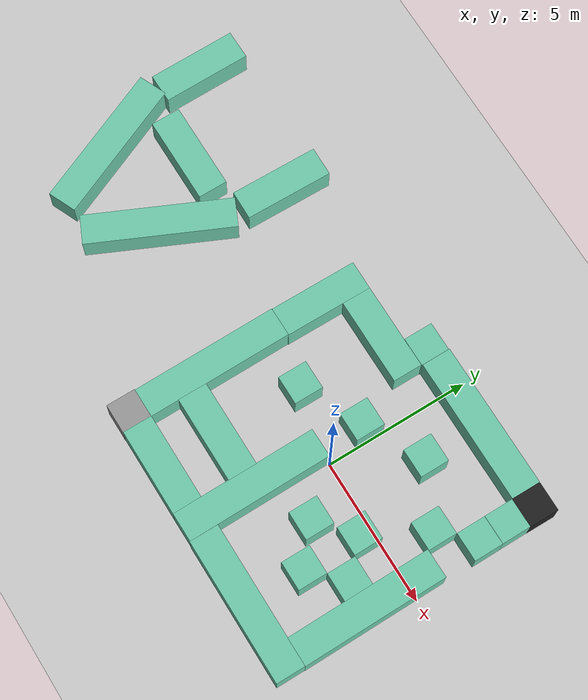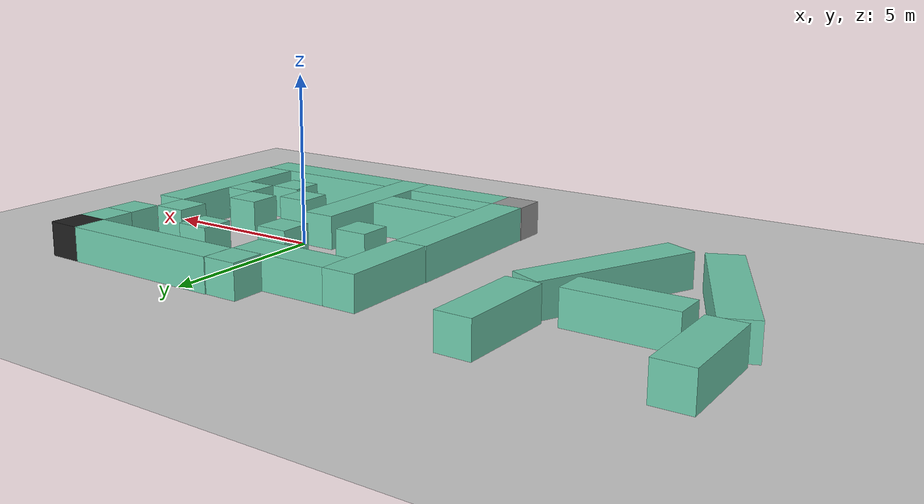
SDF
<sdf version="1.7">
 <world name="default">
  <light name="sun" type="directional">
   <pose>0 0 10 0 -0 0</pose>
   <diffuse>0.8 0.8 0.8 1</diffuse>
   <specular>0.2 0.2 0.2 1</specular>
   <attenuation>
    <range>1000</range>
    <constant>0.9</constant>
    <linear>0.01</linear>
    <quadratic>0.001</quadratic>
   </attenuation>
   <direction>-0.5 0.1 -0.9</direction>
   <spot><inner_angle>0</inner_angle><outer_angle>0</outer_angle><falloff>0</falloff></spot>
  </light>
  <model name="ground_plane">
   <static>1</static>
   <link name="link">
    <collision name="collision">
     <geometry><plane><normal>0 0 1</normal><size>100 100</size></plane></geometry>
     <surface>
      <contact><collide_bitmask>65535</collide_bitmask></contact>
      <friction><ode><mu>100</mu><mu2>50</mu2></ode></friction>
     </surface>
    </collision>
    <visual name="visual">
     <cast_shadows>0</cast_shadows>
     <geometry><plane><normal>0 0 1</normal><size>100 100</size></plane></geometry>
     <material>
      <script><uri>file://media/materials/scripts/gazebo.material</uri><name>Gazebo/Grey</name></script>
     </material>
    </visual>
   </link>
  </model>
  <gravity>0 0 -9.8</gravity>
  <magnetic_field>6e-06 2.3e-05 -4.2e-05</magnetic_field>
  <atmosphere type="adiabatic"/>
  <physics type="ode">
   <max_step_size>0.001</max_step_size>
   <real_time_factor>1</real_time_factor>
   <real_time_update_rate>1000</real_time_update_rate>
  </physics>
  <scene><ambient>0.4 0.4 0.4 1</ambient><background>0.7 0.7 0.7 1</background><shadows>1</shadows></scene>
  <spherical_coordinates>
   <surface_model>EARTH_WGS84</surface_model>
   <latitude_deg>0</latitude_deg>
   <longitude_deg>0</longitude_deg>
   <elevation>0</elevation>
   <heading_deg>0</heading_deg>
  </spherical_coordinates>
  <model name="beyaz_1">
   <pose>-6.40847 -3.04468 0 0 -0 0</pose>
   <link name="Wall_14">
    <collision name="Wall_14_Collision">
     <geometry><box><size>1.01 1 1</size></box></geometry>
     <pose>0 0 0.5 0 -0 0</pose>
    </collision>
    <visual name="Wall_14_Visual">
     <pose>0 0 0.5 0 -0 0</pose>
     <geometry><box><size>1.01 1 1</size></box></geometry>
     <material>
      <script><uri>file://media/materials/scripts/gazebo.material</uri><name>Gazebo/Grey</name></script>
      <ambient>1 1 1 1</ambient>
     </material>
     <meta><layer>0</layer></meta>
    </visual>
    <pose>1.89154 -1.45759 0 0 -0 3.14159</pose>
   </link>
   <static>1</static>
  </model>
  <model name="yesil_3">
   <pose>-2.51252 -4.49376 0 0 -0 0</pose>
   <link name="Wall_6">
    <collision name="Wall_6_Collision">
     <geometry><box><size>3 1 1</size></box></geometry>
     <pose>0 0 0.5 0 -0 0</pose>
    </collision>
    <visual name="Wall_6_Visual">
     <pose>0 0 0.5 0 -0 0</pose>
     <geometry><box><size>3 1 1</size></box></geometry>
     <material>
      <script><uri>file://media/materials/scripts/gazebo.material</uri><name>Gazebo/Grey</name></script>
      <ambient>0.435294 0.796078 0.67451 1</ambient>
     </material>
     <meta><layer>0</layer></meta>
    </visual>
    <pose>0 0 0 0 -0 3.14159</pose>
   </link>
   <static>1</static>
  </model>
  <model name="yesil_5">
   <pose>-0.530437 -2.49174 0 0 -0 1.57822</pose>
   <link name="Wall_4">
    <collision name="Wall_4_Collision">
     <geometry><box><size>5 1 1</size></box></geometry>
     <pose>0 0 0.5 0 -0 0</pose>
    </collision>
    <visual name="Wall_4_Visual">
     <pose>0 0 0.5 0 -0 0</pose>
     <geometry><box><size>5 1 1</size></box></geometry>
     <material>
      <script><uri>file://media/materials/scripts/gazebo.material</uri><name>Gazebo/Grey</name></script>
      <ambient>0.435294 0.796078 0.67451 1</ambient>
     </material>
     <meta><layer>0</layer></meta>
    </visual>
   </link>
   <static>1</static>
  </model>
  <model name="yesil_3_0">
   <pose>-2.51782 -2.51975 0 0 -0 0</pose>
   <link name="Wall_6">
    <collision name="Wall_6_Collision">
     <geometry><box><size>3 1 1</size></box></geometry>
     <pose>0 0 0.5 0 -0 0</pose>
    </collision>
    <visual name="Wall_6_Visual">
     <pose>0 0 0.5 0 -0 0</pose>
     <geometry><box><size>3 1 1</size></box></geometry>
     <material>
      <script><uri>file://media/materials/scripts/gazebo.material</uri><name>Gazebo/Grey</name></script>
      <ambient>0.435294 0.796078 0.67451 1</ambient>
     </material>
     <meta><layer>0</layer></meta>
    </visual>
    <pose>0 0 0 0 -0 3.14159</pose>
   </link>
   <static>1</static>
  </model>
  <model name="yesil_5_clone">
   <pose>-4.5168 -1.50379 0 0 -0 1.57822</pose>
   <link name="Wall_4">
    <collision name="Wall_4_Collision">
     <geometry><box><size>5 1 1</size></box></geometry>
     <pose>0 0 0.5 0 -0 0</pose>
    </collision>
    <visual name="Wall_4_Visual">
     <pose>0 0 0.5 0 -0 0</pose>
     <geometry><box><size>5 1 1</size></box></geometry>
     <material>
      <script><uri>file://media/materials/scripts/gazebo.material</uri><name>Gazebo/Grey</name></script>
      <ambient>0.435294 0.796078 0.67451 1</ambient>
     </material>
     <meta><layer>0</layer></meta>
    </visual>
   </link>
   <static>1</static>
  </model>
  <model name="yesil_5_clone_0">
   <pose>-9.45103 -0.51322 0 0 -0 1.14047</pose>
   <link name="Wall_4">
    <collision name="Wall_4_Collision">
     <geometry><box><size>5 1 1</size></box></geometry>
     <pose>0 0 0.5 0 -0 0</pose>
    </collision>
    <visual name="Wall_4_Visual">
     <pose>0 0 0.5 0 -0 0</pose>
     <geometry><box><size>5 1 1</size></box></geometry>
     <material>
      <script><uri>file://media/materials/scripts/gazebo.material</uri><name>Gazebo/Grey</name></script>
      <ambient>0.435294 0.796078 0.67451 1</ambient>
     </material>
     <meta><layer>0</layer></meta>
    </visual>
   </link>
   <static>1</static>
  </model>
  <model name="yesil_5_clone_0_clone">
   <pose>-12.6533 -0.543096 0 0 -0 1.98539</pose>
   <link name="Wall_4">
    <collision name="Wall_4_Collision">
     <geometry><box><size>5 1 1</size></box></geometry>
     <pose>0 0 0.5 0 -0 0</pose>
    </collision>
    <visual name="Wall_4_Visual">
     <pose>0 0 0.5 0 -0 0</pose>
     <geometry><box><size>5 1 1</size></box></geometry>
     <material>
      <script><uri>file://media/materials/scripts/gazebo.material</uri><name>Gazebo/Grey</name></script>
      <ambient>0.435294 0.796078 0.67451 1</ambient>
     </material>
     <meta><layer>0</layer></meta>
    </visual>
   </link>
   <static>1</static>
  </model>
  <model name="yesil_3_0_clone">
   <pose>-10.9745 1.51173 0 0 -0 0</pose>
   <link name="Wall_6">
    <collision name="Wall_6_Collision">
     <geometry><box><size>3 1 1</size></box></geometry>
     <pose>0 0 0.5 0 -0 0</pose>
    </collision>
    <visual name="Wall_6_Visual">
     <pose>0 0 0.5 0 -0 0</pose>
     <geometry><box><size>3 1 1</size></box></geometry>
     <material>
      <script><uri>file://media/materials/scripts/gazebo.material</uri><name>Gazebo/Grey</name></script>
      <ambient>0.435294 0.796078 0.67451 1</ambient>
     </material>
     <meta><layer>0</layer></meta>
    </visual>
    <pose>0 0 0 0 -0 3.14159</pose>
   </link>
   <static>1</static>
  </model>
  <model name="yesil_3_0_clone_clone">
   <pose>-8.50235 3.49741 0 0 0 -1.58674</pose>
   <link name="Wall_6">
    <collision name="Wall_6_Collision">
     <geometry><box><size>3 1 1</size></box></geometry>
     <pose>0 0 0.5 0 -0 0</pose>
    </collision>
    <visual name="Wall_6_Visual">
     <pose>0 0 0.5 0 -0 0</pose>
     <geometry><box><size>3 1 1</size></box></geometry>
     <material>
      <script><uri>file://media/materials/scripts/gazebo.material</uri><name>Gazebo/Grey</name></script>
      <ambient>0.435294 0.796078 0.67451 1</ambient>
     </material>
     <meta><layer>0</layer></meta>
    </visual>
    <pose>0 0 0 0 -0 3.14159</pose>
   </link>
   <static>1</static>
  </model>
  <model name="yesil_3_0_clone_clone_0">
   <pose>-13.4477 3.37846 0 0 0 -1.5608</pose>
   <link name="Wall_6">
    <collision name="Wall_6_Collision">
     <geometry><box><size>3 1 1</size></box></geometry>
     <pose>0 0 0.5 0 -0 0</pose>
    </collision>
    <visual name="Wall_6_Visual">
     <pose>0 0 0.5 0 -0 0</pose>
     <geometry><box><size>3 1 1</size></box></geometry>
     <material>
      <script><uri>file://media/materials/scripts/gazebo.material</uri><name>Gazebo/Grey</name></script>
      <ambient>0.435294 0.796078 0.67451 1</ambient>
     </material>
     <meta><layer>0</layer></meta>
    </visual>
    <pose>0 0 0 0 -0 3.14159</pose>
   </link>
   <static>1</static>
  </model>
  <model name="yesil_5_0_clone">
   <pose>2.4863 -4.50444 0 0 -0 0</pose>
   <link name="Wall_4">
    <collision name="Wall_4_Collision">
     <geometry><box><size>5 1 1</size></box></geometry>
     <pose>0 0 0.5 0 -0 0</pose>
    </collision>
    <visual name="Wall_4_Visual">
     <pose>0 0 0.5 0 -0 0</pose>
     <geometry><box><size>5 1 1</size></box></geometry>
     <material>
      <script><uri>file://media/materials/scripts/gazebo.material</uri><name>Gazebo/Grey</name></script>
      <ambient>0.435294 0.796078 0.67451 1</ambient>
     </material>
     <meta><layer>0</layer></meta>
    </visual>
   </link>
   <static>1</static>
  </model>
  <model name="yesil_1">
   <pose>2.45612 -0.489767 0 0 -0 0</pose>
   <link name="Wall_8">
    <collision name="Wall_8_Collision">
     <geometry><box><size>1 1 1</size></box></geometry>
     <pose>0 0 0.5 0 -0 0</pose>
    </collision>
    <visual name="Wall_8_Visual">
     <pose>0 0 0.5 0 -0 0</pose>
     <geometry><box><size>1 1 1</size></box></geometry>
     <material>
      <script><uri>file://media/materials/scripts/gazebo.material</uri><name>Gazebo/Grey</name></script>
      <ambient>0.435294 0.796078 0.67451 1</ambient>
     </material>
     <meta><layer>0</layer></meta>
    </visual>
   </link>
   <static>1</static>
  </model>
  <model name="yesil_1_clone">
   <pose>2.47803 -2.48302 0 0 -0 0</pose>
   <link name="Wall_8">
    <collision name="Wall_8_Collision">
     <geometry><box><size>1 1 1</size></box></geometry>
     <pose>0 0 0.5 0 -0 0</pose>
    </collision>
    <visual name="Wall_8_Visual">
     <pose>0 0 0.5 0 -0 0</pose>
     <geometry><box><size>1 1 1</size></box></geometry>
     <material>
      <script><uri>file://media/materials/scripts/gazebo.material</uri><name>Gazebo/Grey</name></script>
      <ambient>0.435294 0.796078 0.67451 1</ambient>
     </material>
     <meta><layer>0</layer></meta>
    </visual>
   </link>
   <static>1</static>
  </model>
  <model name="yesil_1_clone_0">
   <pose>1.29564 -1.48584 0 0 -0 0</pose>
   <link name="Wall_8">
    <collision name="Wall_8_Collision">
     <geometry><box><size>1 1 1</size></box></geometry>
     <pose>0 0 0.5 0 -0 0</pose>
    </collision>
    <visual name="Wall_8_Visual">
     <pose>0 0 0.5 0 -0 0</pose>
     <geometry><box><size>1 1 1</size></box></geometry>
     <material>
      <script><uri>file://media/materials/scripts/gazebo.material</uri><name>Gazebo/Grey</name></script>
      <ambient>0.435294 0.796078 0.67451 1</ambient>
     </material>
     <meta><layer>0</layer></meta>
    </visual>
   </link>
   <static>1</static>
  </model>
  <model name="yesil_1_clone_1">
   <pose>3.48974 -1.48914 0 0 -0 0</pose>
   <link name="Wall_8">
    <collision name="Wall_8_Collision">
     <geometry><box><size>1 1 1</size></box></geometry>
     <pose>0 0 0.5 0 -0 0</pose>
    </collision>
    <visual name="Wall_8_Visual">
     <pose>0 0 0.5 0 -0 0</pose>
     <geometry><box><size>1 1 1</size></box></geometry>
     <material>
      <script><uri>file://media/materials/scripts/gazebo.material</uri><name>Gazebo/Grey</name></script>
      <ambient>0.435294 0.796078 0.67451 1</ambient>
     </material>
     <meta><layer>0</layer></meta>
    </visual>
   </link>
   <static>1</static>
  </model>
  <model name="yesil_5_clone_clone">
   <pose>4.47826 -1.51062 0 0 -0 1.57822</pose>
   <link name="Wall_4">
    <collision name="Wall_4_Collision">
     <geometry><box><size>5 1 1</size></box></geometry>
     <pose>0 0 0.5 0 -0 0</pose>
    </collision>
    <visual name="Wall_4_Visual">
     <pose>0 0 0.5 0 -0 0</pose>
     <geometry><box><size>5 1 1</size></box></geometry>
     <material>
      <script><uri>file://media/materials/scripts/gazebo.material</uri><name>Gazebo/Grey</name></script>
      <ambient>0.435294 0.796078 0.67451 1</ambient>
     </material>
     <meta><layer>0</layer></meta>
    </visual>
   </link>
   <static>1</static>
  </model>
  <model name="yesil_1_clone_2">
   <pose>3.50826 1.49716 0 0 -0 0</pose>
   <link name="Wall_8">
    <collision name="Wall_8_Collision">
     <geometry><box><size>1 1 1</size></box></geometry>
     <pose>0 0 0.5 0 -0 0</pose>
    </collision>
    <visual name="Wall_8_Visual">
     <pose>0 0 0.5 0 -0 0</pose>
     <geometry><box><size>1 1 1</size></box></geometry>
     <material>
      <script><uri>file://media/materials/scripts/gazebo.material</uri><name>Gazebo/Grey</name></script>
      <ambient>0.435294 0.796078 0.67451 1</ambient>
     </material>
     <meta><layer>0</layer></meta>
    </visual>
   </link>
   <static>1</static>
  </model>
  <model name="yesil_1_clone_3">
   <pose>4.51015 2.50049 0 0 -0 0</pose>
   <link name="Wall_8">
    <collision name="Wall_8_Collision">
     <geometry><box><size>1 1 1</size></box></geometry>
     <pose>0 0 0.5 0 -0 0</pose>
    </collision>
    <visual name="Wall_8_Visual">
     <pose>0 0 0.5 0 -0 0</pose>
     <geometry><box><size>1 1 1</size></box></geometry>
     <material>
      <script><uri>file://media/materials/scripts/gazebo.material</uri><name>Gazebo/Grey</name></script>
      <ambient>0.435294 0.796078 0.67451 1</ambient>
     </material>
     <meta><layer>0</layer></meta>
    </visual>
   </link>
   <static>1</static>
  </model>
  <model name="yesil_1_clone_4">
   <pose>4.50851 3.50378 0 0 -0 0</pose>
   <link name="Wall_8">
    <collision name="Wall_8_Collision">
     <geometry><box><size>1 1 1</size></box></geometry>
     <pose>0 0 0.5 0 -0 0</pose>
    </collision>
    <visual name="Wall_8_Visual">
     <pose>0 0 0.5 0 -0 0</pose>
     <geometry><box><size>1 1 1</size></box></geometry>
     <material>
      <script><uri>file://media/materials/scripts/gazebo.material</uri><name>Gazebo/Grey</name></script>
      <ambient>0.435294 0.796078 0.67451 1</ambient>
     </material>
     <meta><layer>0</layer></meta>
    </visual>
   </link>
   <static>1</static>
  </model>
  <model name="yesil_5_0_clone_0">
   <pose>1.50906 4.5234 0 0 -0 0</pose>
   <link name="Wall_4">
    <collision name="Wall_4_Collision">
     <geometry><box><size>5 1 1</size></box></geometry>
     <pose>0 0 0.5 0 -0 0</pose>
    </collision>
    <visual name="Wall_4_Visual">
     <pose>0 0 0.5 0 -0 0</pose>
     <geometry><box><size>5 1 1</size></box></geometry>
     <material>
      <script><uri>file://media/materials/scripts/gazebo.material</uri><name>Gazebo/Grey</name></script>
      <ambient>0.435294 0.796078 0.67451 1</ambient>
     </material>
     <meta><layer>0</layer></meta>
    </visual>
   </link>
   <static>1</static>
  </model>
  <model name="yesil_3_0_clone_clone_clone">
   <pose>-4.51091 2.49278 0 0 0 -1.57619</pose>
   <link name="Wall_6">
    <collision name="Wall_6_Collision">
     <geometry><box><size>3 1 1</size></box></geometry>
     <pose>0 0 0.5 0 -0 0</pose>
    </collision>
    <visual name="Wall_6_Visual">
     <pose>0 0 0.5 0 -0 0</pose>
     <geometry><box><size>3 1 1</size></box></geometry>
     <material>
      <script><uri>file://media/materials/scripts/gazebo.material</uri><name>Gazebo/Grey</name></script>
      <ambient>0.435294 0.796078 0.67451 1</ambient>
     </material>
     <meta><layer>0</layer></meta>
    </visual>
    <pose>0 0 0 0 -0 3.14159</pose>
   </link>
   <static>1</static>
  </model>
  <model name="yesil_3_0_clone_0">
   <pose>-2.51871 3.48941 0 0 -0 0</pose>
   <link name="Wall_6">
    <collision name="Wall_6_Collision">
     <geometry><box><size>3 1 1</size></box></geometry>
     <pose>0 0 0.5 0 -0 0</pose>
    </collision>
    <visual name="Wall_6_Visual">
     <pose>0 0 0.5 0 -0 0</pose>
     <geometry><box><size>3 1 1</size></box></geometry>
     <material>
      <script><uri>file://media/materials/scripts/gazebo.material</uri><name>Gazebo/Grey</name></script>
      <ambient>0.435294 0.796078 0.67451 1</ambient>
     </material>
     <meta><layer>0</layer></meta>
    </visual>
    <pose>0 0 0 0 -0 3.14159</pose>
   </link>
   <static>1</static>
  </model>
  <model name="yesil_1_clone_2_clone">
   <pose>-1.49654 4.49493 0 0 -0 0</pose>
   <link name="Wall_8">
    <collision name="Wall_8_Collision">
     <geometry><box><size>1 1 1</size></box></geometry>
     <pose>0 0 0.5 0 -0 0</pose>
    </collision>
    <visual name="Wall_8_Visual">
     <pose>0 0 0.5 0 -0 0</pose>
     <geometry><box><size>1 1 1</size></box></geometry>
     <material>
      <script><uri>file://media/materials/scripts/gazebo.material</uri><name>Gazebo/Grey</name></script>
      <ambient>0.435294 0.796078 0.67451 1</ambient>
     </material>
     <meta><layer>0</layer></meta>
    </visual>
   </link>
   <static>1</static>
  </model>
  <model name="yesil_1_clone_2_clone_0">
   <pose>1.4848 2.53502 0 0 -0 0</pose>
   <link name="Wall_8">
    <collision name="Wall_8_Collision">
     <geometry><box><size>1 1 1</size></box></geometry>
     <pose>0 0 0.5 0 -0 0</pose>
    </collision>
    <visual name="Wall_8_Visual">
     <pose>0 0 0.5 0 -0 0</pose>
     <geometry><box><size>1 1 1</size></box></geometry>
     <material>
      <script><uri>file://media/materials/scripts/gazebo.material</uri><name>Gazebo/Grey</name></script>
      <ambient>0.435294 0.796078 0.67451 1</ambient>
     </material>
     <meta><layer>0</layer></meta>
    </visual>
   </link>
   <static>1</static>
  </model>
  <model name="yesil_1_clone_2_clone_0_clone">
   <pose>-0.512119 1.48863 0 0 -0 0</pose>
   <link name="Wall_8">
    <collision name="Wall_8_Collision">
     <geometry><box><size>1 1 1</size></box></geometry>
     <pose>0 0 0.5 0 -0 0</pose>
    </collision>
    <visual name="Wall_8_Visual">
     <pose>0 0 0.5 0 -0 0</pose>
     <geometry><box><size>1 1 1</size></box></geometry>
     <material>
      <script><uri>file://media/materials/scripts/gazebo.material</uri><name>Gazebo/Grey</name></script>
      <ambient>0.435294 0.796078 0.67451 1</ambient>
     </material>
     <meta><layer>0</layer></meta>
    </visual>
   </link>
   <static>1</static>
  </model>
  <model name="yesil_1_clone_2_clone_0_clone_0">
   <pose>-2.50959 0.490826 0 0 -0 0</pose>
   <link name="Wall_8">
    <collision name="Wall_8_Collision">
     <geometry><box><size>1 1 1</size></box></geometry>
     <pose>0 0 0.5 0 -0 0</pose>
    </collision>
    <visual name="Wall_8_Visual">
     <pose>0 0 0.5 0 -0 0</pose>
     <geometry><box><size>1 1 1</size></box></geometry>
     <material>
      <script><uri>file://media/materials/scripts/gazebo.material</uri><name>Gazebo/Grey</name></script>
      <ambient>0.435294 0.796078 0.67451 1</ambient>
     </material>
     <meta><layer>0</layer></meta>
    </visual>
   </link>
   <static>1</static>
  </model>
  <model name="siyah_1">
   <link name="Wall_12">
    <pose>0.1455 -0.1415 0 0 0 -0.643501</pose>
    <inertial>
     <mass>1</mass>
     <inertia><ixx>1</ixx><ixy>0</ixy><ixz>0</ixz><iyy>1</iyy><iyz>0</iyz><izz>1</izz></inertia>
    </inertial>
    <visual name="Wall_12_Visual">
     <pose>0 0 0.5 0 -0 0</pose>
     <geometry><box><size>1.01 1 1</size></box></geometry>
     <material>
      <script><uri>file://media/materials/scripts/gazebo.material</uri><name>Gazebo/Black</name></script>
      <ambient>0 0 0 1</ambient>
      <shader type="pixel"><normal_map>__default__</normal_map></shader>
      <diffuse>0 0 0 1</diffuse>
      <specular>0 0 0 1</specular>
      <emissive>0 0 0 1</emissive>
     </material>
     <meta><layer>0</layer></meta>
    </visual>
    <collision name="Wall_12_Collision">
     <pose>0 0 0.5 0 -0 0</pose>
     <geometry><box><size>1.01 1 1</size></box></geometry>
     <surface>
      <friction>
       <ode><mu>1</mu><mu2>1</mu2><fdir1>0 0 0</fdir1><slip1>0</slip1><slip2>0</slip2></ode>
       <torsional>
        <coefficient>1</coefficient>
        <patch_radius>0</patch_radius>
        <surface_radius>0</surface_radius>
        <use_patch_radius>1</use_patch_radius>
        <ode><slip>0</slip></ode>
       </torsional>
      </friction>
      <bounce><restitution_coefficient>0</restitution_coefficient><threshold>1e+06</threshold></bounce>
      <contact>
       <collide_without_contact>0</collide_without_contact>
       <collide_without_contact_bitmask>1</collide_without_contact_bitmask>
       <collide_bitmask>1</collide_bitmask>
       <ode>
        <soft_cfm>0</soft_cfm>
        <soft_erp>0.2</soft_erp>
        <kp>1e+13</kp>
        <kd>1</kd>
        <max_vel>0.01</max_vel>
        <min_depth>0</min_depth>
       </ode>
       <bullet>
        <split_impulse>1</split_impulse>
        <split_impulse_penetration_threshold>-0.01</split_impulse_penetration_threshold>
        <soft_cfm>0</soft_cfm>
        <soft_erp>0.2</soft_erp>
        <kp>1e+13</kp>
        <kd>1</kd>
       </bullet>
      </contact>
     </surface>
    </collision>
   </link>
   <static>1</static>
   <pose>4.31449 4.54201 0 0 -0 0.632303</pose>
  </model>
 </world>
</sdf>
